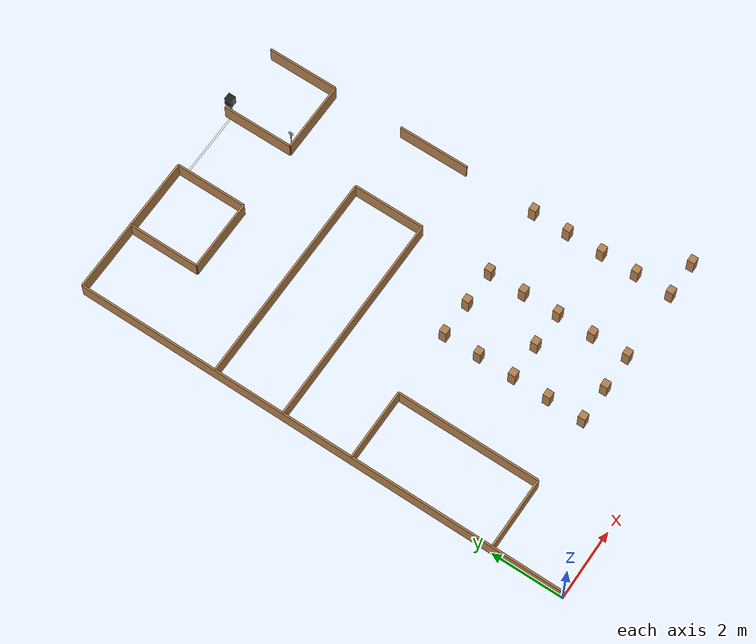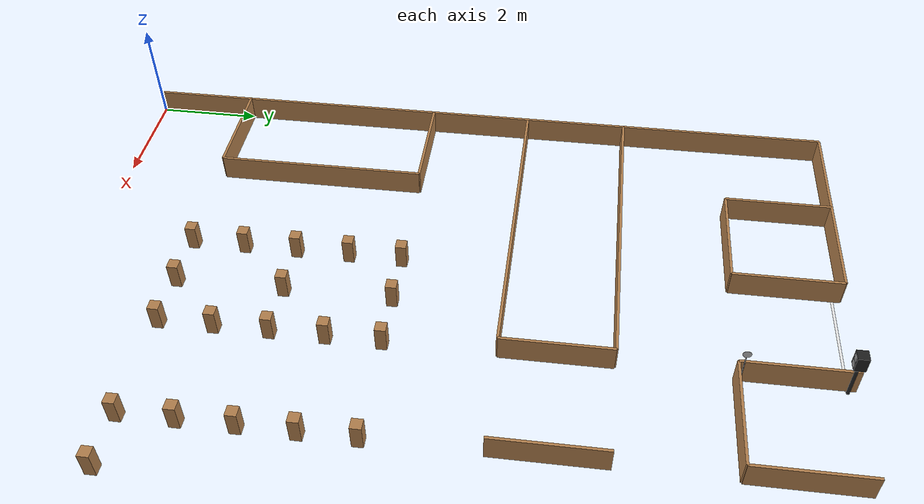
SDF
<sdf version="1.6">
 <world name="default">
  <model name="box_71">
   <pose>9.0 2.0 0.25 0 0 0</pose>
   <link name="link">
    <inertial>
     <mass>1</mass>
     <inertia><ixx>0</ixx><ixy>0</ixy><ixz>0</ixz><iyy>0</iyy><iyz>0</iyz><izz>0</izz></inertia>
    </inertial>
    <collision name="collision"><geometry><box><size>0.2 0.2 0.5</size></box></geometry></collision>
    <visual name="visual">
     <geometry><box><size>0.2 0.2 0.5</size></box></geometry>
     <material>
      <script><name>Gazebo/WoodPallet</name><uri>file://media/materials/scripts/gazebo.material</uri></script>
     </material>
    </visual>
   </link>
   <static>1</static>
  </model>
  <model name="box_70">
   <pose>8.0 2.0 0.25 0 0 0</pose>
   <link name="link">
    <inertial>
     <mass>1</mass>
     <inertia><ixx>0</ixx><ixy>0</ixy><ixz>0</ixz><iyy>0</iyy><iyz>0</iyz><izz>0</izz></inertia>
    </inertial>
    <collision name="collision"><geometry><box><size>0.2 0.2 0.5</size></box></geometry></collision>
    <visual name="visual">
     <geometry><box><size>0.2 0.2 0.5</size></box></geometry>
     <material>
      <script><name>Gazebo/WoodPallet</name><uri>file://media/materials/scripts/gazebo.material</uri></script>
     </material>
    </visual>
   </link>
   <static>1</static>
  </model>
  <model name="box_68">
   <pose>8.0 3.0 0.25 0 0 0</pose>
   <link name="link">
    <inertial>
     <mass>1</mass>
     <inertia><ixx>0</ixx><ixy>0</ixy><ixz>0</ixz><iyy>0</iyy><iyz>0</iyz><izz>0</izz></inertia>
    </inertial>
    <collision name="collision"><geometry><box><size>0.2 0.2 0.5</size></box></geometry></collision>
    <visual name="visual">
     <geometry><box><size>0.2 0.2 0.5</size></box></geometry>
     <material>
      <script><name>Gazebo/WoodPallet</name><uri>file://media/materials/scripts/gazebo.material</uri></script>
     </material>
    </visual>
   </link>
   <static>1</static>
  </model>
  <model name="box_65">
   <pose>8.0 4.0 0.25 0 0 0</pose>
   <link name="link">
    <inertial>
     <mass>1</mass>
     <inertia><ixx>0</ixx><ixy>0</ixy><ixz>0</ixz><iyy>0</iyy><iyz>0</iyz><izz>0</izz></inertia>
    </inertial>
    <collision name="collision"><geometry><box><size>0.2 0.2 0.5</size></box></geometry></collision>
    <visual name="visual">
     <geometry><box><size>0.2 0.2 0.5</size></box></geometry>
     <material>
      <script><name>Gazebo/WoodPallet</name><uri>file://media/materials/scripts/gazebo.material</uri></script>
     </material>
    </visual>
   </link>
   <static>1</static>
  </model>
  <model name="box_62">
   <pose>8.0 4.0 0.25 0 0 0</pose>
   <link name="link">
    <inertial>
     <mass>1</mass>
     <inertia><ixx>0</ixx><ixy>0</ixy><ixz>0</ixz><iyy>0</iyy><iyz>0</iyz><izz>0</izz></inertia>
    </inertial>
    <collision name="collision"><geometry><box><size>0.2 0.2 0.5</size></box></geometry></collision>
    <visual name="visual">
     <geometry><box><size>0.2 0.2 0.5</size></box></geometry>
     <material>
      <script><name>Gazebo/WoodPallet</name><uri>file://media/materials/scripts/gazebo.material</uri></script>
     </material>
    </visual>
   </link>
   <static>1</static>
  </model>
  <model name="box_60">
   <pose>8.0 5.0 0.25 0 0 0</pose>
   <link name="link">
    <inertial>
     <mass>1</mass>
     <inertia><ixx>0</ixx><ixy>0</ixy><ixz>0</ixz><iyy>0</iyy><iyz>0</iyz><izz>0</izz></inertia>
    </inertial>
    <collision name="collision"><geometry><box><size>0.2 0.2 0.5</size></box></geometry></collision>
    <visual name="visual">
     <geometry><box><size>0.2 0.2 0.5</size></box></geometry>
     <material>
      <script><name>Gazebo/WoodPallet</name><uri>file://media/materials/scripts/gazebo.material</uri></script>
     </material>
    </visual>
   </link>
   <static>1</static>
  </model>
  <model name="box_57">
   <pose>8.0 6.0 0.25 0 0 0</pose>
   <link name="link">
    <inertial>
     <mass>1</mass>
     <inertia><ixx>0</ixx><ixy>0</ixy><ixz>0</ixz><iyy>0</iyy><iyz>0</iyz><izz>0</izz></inertia>
    </inertial>
    <collision name="collision"><geometry><box><size>0.2 0.2 0.5</size></box></geometry></collision>
    <visual name="visual">
     <geometry><box><size>0.2 0.2 0.5</size></box></geometry>
     <material>
      <script><name>Gazebo/WoodPallet</name><uri>file://media/materials/scripts/gazebo.material</uri></script>
     </material>
    </visual>
   </link>
   <static>1</static>
  </model>
  <model name="box_56">
   <pose>6.0 2.0 0.25 0 0 0</pose>
   <link name="link">
    <inertial>
     <mass>1</mass>
     <inertia><ixx>0</ixx><ixy>0</ixy><ixz>0</ixz><iyy>0</iyy><iyz>0</iyz><izz>0</izz></inertia>
    </inertial>
    <collision name="collision"><geometry><box><size>0.2 0.2 0.5</size></box></geometry></collision>
    <visual name="visual">
     <geometry><box><size>0.2 0.2 0.5</size></box></geometry>
     <material>
      <script><name>Gazebo/WoodPallet</name><uri>file://media/materials/scripts/gazebo.material</uri></script>
     </material>
    </visual>
   </link>
   <static>1</static>
  </model>
  <model name="box_55">
   <pose>5.0 2.0 0.25 0 0 0</pose>
   <link name="link">
    <inertial>
     <mass>1</mass>
     <inertia><ixx>0</ixx><ixy>0</ixy><ixz>0</ixz><iyy>0</iyy><iyz>0</iyz><izz>0</izz></inertia>
    </inertial>
    <collision name="collision"><geometry><box><size>0.2 0.2 0.5</size></box></geometry></collision>
    <visual name="visual">
     <geometry><box><size>0.2 0.2 0.5</size></box></geometry>
     <material>
      <script><name>Gazebo/WoodPallet</name><uri>file://media/materials/scripts/gazebo.material</uri></script>
     </material>
    </visual>
   </link>
   <static>1</static>
  </model>
  <model name="box_54">
   <pose>4.0 2.0 0.25 0 0 0</pose>
   <link name="link">
    <inertial>
     <mass>1</mass>
     <inertia><ixx>0</ixx><ixy>0</ixy><ixz>0</ixz><iyy>0</iyy><iyz>0</iyz><izz>0</izz></inertia>
    </inertial>
    <collision name="collision"><geometry><box><size>0.2 0.2 0.5</size></box></geometry></collision>
    <visual name="visual">
     <geometry><box><size>0.2 0.2 0.5</size></box></geometry>
     <material>
      <script><name>Gazebo/WoodPallet</name><uri>file://media/materials/scripts/gazebo.material</uri></script>
     </material>
    </visual>
   </link>
   <static>1</static>
  </model>
  <model name="box_53">
   <pose>6.0 3.0 0.25 0 0 0</pose>
   <link name="link">
    <inertial>
     <mass>1</mass>
     <inertia><ixx>0</ixx><ixy>0</ixy><ixz>0</ixz><iyy>0</iyy><iyz>0</iyz><izz>0</izz></inertia>
    </inertial>
    <collision name="collision"><geometry><box><size>0.2 0.2 0.5</size></box></geometry></collision>
    <visual name="visual">
     <geometry><box><size>0.2 0.2 0.5</size></box></geometry>
     <material>
      <script><name>Gazebo/WoodPallet</name><uri>file://media/materials/scripts/gazebo.material</uri></script>
     </material>
    </visual>
   </link>
   <static>1</static>
  </model>
  <model name="box_52">
   <pose>4.0 3.0 0.25 0 0 0</pose>
   <link name="link">
    <inertial>
     <mass>1</mass>
     <inertia><ixx>0</ixx><ixy>0</ixy><ixz>0</ixz><iyy>0</iyy><iyz>0</iyz><izz>0</izz></inertia>
    </inertial>
    <collision name="collision"><geometry><box><size>0.2 0.2 0.5</size></box></geometry></collision>
    <visual name="visual">
     <geometry><box><size>0.2 0.2 0.5</size></box></geometry>
     <material>
      <script><name>Gazebo/WoodPallet</name><uri>file://media/materials/scripts/gazebo.material</uri></script>
     </material>
    </visual>
   </link>
   <static>1</static>
  </model>
  <model name="box_51">
   <pose>6.0 4.0 0.25 0 0 0</pose>
   <link name="link">
    <inertial>
     <mass>1</mass>
     <inertia><ixx>0</ixx><ixy>0</ixy><ixz>0</ixz><iyy>0</iyy><iyz>0</iyz><izz>0</izz></inertia>
    </inertial>
    <collision name="collision"><geometry><box><size>0.2 0.2 0.5</size></box></geometry></collision>
    <visual name="visual">
     <geometry><box><size>0.2 0.2 0.5</size></box></geometry>
     <material>
      <script><name>Gazebo/WoodPallet</name><uri>file://media/materials/scripts/gazebo.material</uri></script>
     </material>
    </visual>
   </link>
   <static>1</static>
  </model>
  <model name="box_50">
   <pose>5.0 4.0 0.25 0 0 0</pose>
   <link name="link">
    <inertial>
     <mass>1</mass>
     <inertia><ixx>0</ixx><ixy>0</ixy><ixz>0</ixz><iyy>0</iyy><iyz>0</iyz><izz>0</izz></inertia>
    </inertial>
    <collision name="collision"><geometry><box><size>0.2 0.2 0.5</size></box></geometry></collision>
    <visual name="visual">
     <geometry><box><size>0.2 0.2 0.5</size></box></geometry>
     <material>
      <script><name>Gazebo/WoodPallet</name><uri>file://media/materials/scripts/gazebo.material</uri></script>
     </material>
    </visual>
   </link>
   <static>1</static>
  </model>
  <model name="box_49">
   <pose>4.0 4.0 0.25 0 0 0</pose>
   <link name="link">
    <inertial>
     <mass>1</mass>
     <inertia><ixx>0</ixx><ixy>0</ixy><ixz>0</ixz><iyy>0</iyy><iyz>0</iyz><izz>0</izz></inertia>
    </inertial>
    <collision name="collision"><geometry><box><size>0.2 0.2 0.5</size></box></geometry></collision>
    <visual name="visual">
     <geometry><box><size>0.2 0.2 0.5</size></box></geometry>
     <material>
      <script><name>Gazebo/WoodPallet</name><uri>file://media/materials/scripts/gazebo.material</uri></script>
     </material>
    </visual>
   </link>
   <static>1</static>
  </model>
  <model name="box_48">
   <pose>6.0 4.0 0.25 0 0 0</pose>
   <link name="link">
    <inertial>
     <mass>1</mass>
     <inertia><ixx>0</ixx><ixy>0</ixy><ixz>0</ixz><iyy>0</iyy><iyz>0</iyz><izz>0</izz></inertia>
    </inertial>
    <collision name="collision"><geometry><box><size>0.2 0.2 0.5</size></box></geometry></collision>
    <visual name="visual">
     <geometry><box><size>0.2 0.2 0.5</size></box></geometry>
     <material>
      <script><name>Gazebo/WoodPallet</name><uri>file://media/materials/scripts/gazebo.material</uri></script>
     </material>
    </visual>
   </link>
   <static>1</static>
  </model>
  <model name="box_47">
   <pose>5.0 4.0 0.25 0 0 0</pose>
   <link name="link">
    <inertial>
     <mass>1</mass>
     <inertia><ixx>0</ixx><ixy>0</ixy><ixz>0</ixz><iyy>0</iyy><iyz>0</iyz><izz>0</izz></inertia>
    </inertial>
    <collision name="collision"><geometry><box><size>0.2 0.2 0.5</size></box></geometry></collision>
    <visual name="visual">
     <geometry><box><size>0.2 0.2 0.5</size></box></geometry>
     <material>
      <script><name>Gazebo/WoodPallet</name><uri>file://media/materials/scripts/gazebo.material</uri></script>
     </material>
    </visual>
   </link>
   <static>1</static>
  </model>
  <model name="box_46">
   <pose>4.0 4.0 0.25 0 0 0</pose>
   <link name="link">
    <inertial>
     <mass>1</mass>
     <inertia><ixx>0</ixx><ixy>0</ixy><ixz>0</ixz><iyy>0</iyy><iyz>0</iyz><izz>0</izz></inertia>
    </inertial>
    <collision name="collision"><geometry><box><size>0.2 0.2 0.5</size></box></geometry></collision>
    <visual name="visual">
     <geometry><box><size>0.2 0.2 0.5</size></box></geometry>
     <material>
      <script><name>Gazebo/WoodPallet</name><uri>file://media/materials/scripts/gazebo.material</uri></script>
     </material>
    </visual>
   </link>
   <static>1</static>
  </model>
  <model name="box_45">
   <pose>6.0 5.0 0.25 0 0 0</pose>
   <link name="link">
    <inertial>
     <mass>1</mass>
     <inertia><ixx>0</ixx><ixy>0</ixy><ixz>0</ixz><iyy>0</iyy><iyz>0</iyz><izz>0</izz></inertia>
    </inertial>
    <collision name="collision"><geometry><box><size>0.2 0.2 0.5</size></box></geometry></collision>
    <visual name="visual">
     <geometry><box><size>0.2 0.2 0.5</size></box></geometry>
     <material>
      <script><name>Gazebo/WoodPallet</name><uri>file://media/materials/scripts/gazebo.material</uri></script>
     </material>
    </visual>
   </link>
   <static>1</static>
  </model>
  <model name="box_44">
   <pose>4.0 5.0 0.25 0 0 0</pose>
   <link name="link">
    <inertial>
     <mass>1</mass>
     <inertia><ixx>0</ixx><ixy>0</ixy><ixz>0</ixz><iyy>0</iyy><iyz>0</iyz><izz>0</izz></inertia>
    </inertial>
    <collision name="collision"><geometry><box><size>0.2 0.2 0.5</size></box></geometry></collision>
    <visual name="visual">
     <geometry><box><size>0.2 0.2 0.5</size></box></geometry>
     <material>
      <script><name>Gazebo/WoodPallet</name><uri>file://media/materials/scripts/gazebo.material</uri></script>
     </material>
    </visual>
   </link>
   <static>1</static>
  </model>
  <model name="box_43">
   <pose>6.0 6.0 0.25 0 0 0</pose>
   <link name="link">
    <inertial>
     <mass>1</mass>
     <inertia><ixx>0</ixx><ixy>0</ixy><ixz>0</ixz><iyy>0</iyy><iyz>0</iyz><izz>0</izz></inertia>
    </inertial>
    <collision name="collision"><geometry><box><size>0.2 0.2 0.5</size></box></geometry></collision>
    <visual name="visual">
     <geometry><box><size>0.2 0.2 0.5</size></box></geometry>
     <material>
      <script><name>Gazebo/WoodPallet</name><uri>file://media/materials/scripts/gazebo.material</uri></script>
     </material>
    </visual>
   </link>
   <static>1</static>
  </model>
  <model name="box_42">
   <pose>5.0 6.0 0.25 0 0 0</pose>
   <link name="link">
    <inertial>
     <mass>1</mass>
     <inertia><ixx>0</ixx><ixy>0</ixy><ixz>0</ixz><iyy>0</iyy><iyz>0</iyz><izz>0</izz></inertia>
    </inertial>
    <collision name="collision"><geometry><box><size>0.2 0.2 0.5</size></box></geometry></collision>
    <visual name="visual">
     <geometry><box><size>0.2 0.2 0.5</size></box></geometry>
     <material>
      <script><name>Gazebo/WoodPallet</name><uri>file://media/materials/scripts/gazebo.material</uri></script>
     </material>
    </visual>
   </link>
   <static>1</static>
  </model>
  <model name="box_41">
   <pose>4.0 6.0 0.25 0 0 0</pose>
   <link name="link">
    <inertial>
     <mass>1</mass>
     <inertia><ixx>0</ixx><ixy>0</ixy><ixz>0</ixz><iyy>0</iyy><iyz>0</iyz><izz>0</izz></inertia>
    </inertial>
    <collision name="collision"><geometry><box><size>0.2 0.2 0.5</size></box></geometry></collision>
    <visual name="visual">
     <geometry><box><size>0.2 0.2 0.5</size></box></geometry>
     <material>
      <script><name>Gazebo/WoodPallet</name><uri>file://media/materials/scripts/gazebo.material</uri></script>
     </material>
    </visual>
   </link>
   <static>1</static>
  </model>
  <include>
   <uri>model://right-sign</uri>
   <name>sign_1</name>
   <pose>6.14 12.06 0 0 0 1.5707963267948966</pose>
  </include>
  <model name="box_37">
   <pose>8.0 13.0 0.25 0 0 -1.5707963267948966</pose>
   <link name="link">
    <inertial>
     <mass>1</mass>
     <inertia><ixx>0</ixx><ixy>0</ixy><ixz>0</ixz><iyy>0</iyy><iyz>0</iyz><izz>0</izz></inertia>
    </inertial>
    <collision name="collision"><geometry><box><size>2.0 0.05 0.5</size></box></geometry></collision>
    <visual name="visual">
     <geometry><box><size>2.0 0.05 0.5</size></box></geometry>
     <material>
      <script><name>Gazebo/WoodPallet</name><uri>file://media/materials/scripts/gazebo.material</uri></script>
     </material>
    </visual>
   </link>
   <static>1</static>
  </model>
  <model name="box_36">
   <pose>7.0 12.0 0.25 0 0 -3.141592653589793</pose>
   <link name="link">
    <inertial>
     <mass>1</mass>
     <inertia><ixx>0</ixx><ixy>0</ixy><ixz>0</ixz><iyy>0</iyy><iyz>0</iyz><izz>0</izz></inertia>
    </inertial>
    <collision name="collision"><geometry><box><size>2.0 0.05 0.5</size></box></geometry></collision>
    <visual name="visual">
     <geometry><box><size>2.0 0.05 0.5</size></box></geometry>
     <material>
      <script><name>Gazebo/WoodPallet</name><uri>file://media/materials/scripts/gazebo.material</uri></script>
     </material>
    </visual>
   </link>
   <static>1</static>
  </model>
  <model name="box_35">
   <pose>6.0 13.0 0.25 0 0 1.5707963267948966</pose>
   <link name="link">
    <inertial>
     <mass>1</mass>
     <inertia><ixx>0</ixx><ixy>0</ixy><ixz>0</ixz><iyy>0</iyy><iyz>0</iyz><izz>0</izz></inertia>
    </inertial>
    <collision name="collision"><geometry><box><size>2.0 0.05 0.5</size></box></geometry></collision>
    <visual name="visual">
     <geometry><box><size>2.0 0.05 0.5</size></box></geometry>
     <material>
      <script><name>Gazebo/WoodPallet</name><uri>file://media/materials/scripts/gazebo.material</uri></script>
     </material>
    </visual>
   </link>
   <static>1</static>
  </model>
  <model name="box_34">
   <pose>2.0 13.0 0.25 0 0 -1.5707963267948966</pose>
   <link name="link">
    <inertial>
     <mass>1</mass>
     <inertia><ixx>0</ixx><ixy>0</ixy><ixz>0</ixz><iyy>0</iyy><iyz>0</iyz><izz>0</izz></inertia>
    </inertial>
    <collision name="collision"><geometry><box><size>2.0 0.05 0.5</size></box></geometry></collision>
    <visual name="visual">
     <geometry><box><size>2.0 0.05 0.5</size></box></geometry>
     <material>
      <script><name>Gazebo/WoodPallet</name><uri>file://media/materials/scripts/gazebo.material</uri></script>
     </material>
    </visual>
   </link>
   <static>1</static>
  </model>
  <model name="box_33">
   <pose>3.0 12.0 0.25 0 0 -0.0</pose>
   <link name="link">
    <inertial>
     <mass>1</mass>
     <inertia><ixx>0</ixx><ixy>0</ixy><ixz>0</ixz><iyy>0</iyy><iyz>0</iyz><izz>0</izz></inertia>
    </inertial>
    <collision name="collision"><geometry><box><size>2.0 0.05 0.5</size></box></geometry></collision>
    <visual name="visual">
     <geometry><box><size>2.0 0.05 0.5</size></box></geometry>
     <material>
      <script><name>Gazebo/WoodPallet</name><uri>file://media/materials/scripts/gazebo.material</uri></script>
     </material>
    </visual>
   </link>
   <static>1</static>
  </model>
  <model name="box_32">
   <pose>4.0 13.0 0.25 0 0 1.5707963267948966</pose>
   <link name="link">
    <inertial>
     <mass>1</mass>
     <inertia><ixx>0</ixx><ixy>0</ixy><ixz>0</ixz><iyy>0</iyy><iyz>0</iyz><izz>0</izz></inertia>
    </inertial>
    <collision name="collision"><geometry><box><size>2.0 0.05 0.5</size></box></geometry></collision>
    <visual name="visual">
     <geometry><box><size>2.0 0.05 0.5</size></box></geometry>
     <material>
      <script><name>Gazebo/WoodPallet</name><uri>file://media/materials/scripts/gazebo.material</uri></script>
     </material>
    </visual>
   </link>
   <static>1</static>
  </model>
  <model name="box_31">
   <pose>1.0 2.0 0.25 0 0 -0.0</pose>
   <link name="link">
    <inertial>
     <mass>1</mass>
     <inertia><ixx>0</ixx><ixy>0</ixy><ixz>0</ixz><iyy>0</iyy><iyz>0</iyz><izz>0</izz></inertia>
    </inertial>
    <collision name="collision"><geometry><box><size>2.0 0.05 0.5</size></box></geometry></collision>
    <visual name="visual">
     <geometry><box><size>2.0 0.05 0.5</size></box></geometry>
     <material>
      <script><name>Gazebo/WoodPallet</name><uri>file://media/materials/scripts/gazebo.material</uri></script>
     </material>
    </visual>
   </link>
   <static>1</static>
  </model>
  <model name="box_30">
   <pose>2.0 4.0 0.25 0 0 1.5707963267948966</pose>
   <link name="link">
    <inertial>
     <mass>1</mass>
     <inertia><ixx>0</ixx><ixy>0</ixy><ixz>0</ixz><iyy>0</iyy><iyz>0</iyz><izz>0</izz></inertia>
    </inertial>
    <collision name="collision"><geometry><box><size>4.0 0.05 0.5</size></box></geometry></collision>
    <visual name="visual">
     <geometry><box><size>4.0 0.05 0.5</size></box></geometry>
     <material>
      <script><name>Gazebo/WoodPallet</name><uri>file://media/materials/scripts/gazebo.material</uri></script>
     </material>
    </visual>
   </link>
   <static>1</static>
  </model>
  <model name="box_29">
   <pose>1.0 6.0 0.25 0 0 -3.141592653589793</pose>
   <link name="link">
    <inertial>
     <mass>1</mass>
     <inertia><ixx>0</ixx><ixy>0</ixy><ixz>0</ixz><iyy>0</iyy><iyz>0</iyz><izz>0</izz></inertia>
    </inertial>
    <collision name="collision"><geometry><box><size>2.0 0.05 0.5</size></box></geometry></collision>
    <visual name="visual">
     <geometry><box><size>2.0 0.05 0.5</size></box></geometry>
     <material>
      <script><name>Gazebo/WoodPallet</name><uri>file://media/materials/scripts/gazebo.material</uri></script>
     </material>
    </visual>
   </link>
   <static>1</static>
  </model>
  <model name="box_28">
   <pose>3.0 10.0 0.25 0 0 -0.0</pose>
   <link name="link">
    <inertial>
     <mass>1</mass>
     <inertia><ixx>0</ixx><ixy>0</ixy><ixz>0</ixz><iyy>0</iyy><iyz>0</iyz><izz>0</izz></inertia>
    </inertial>
    <collision name="collision"><geometry><box><size>6.0 0.05 0.5</size></box></geometry></collision>
    <visual name="visual">
     <geometry><box><size>6.0 0.05 0.5</size></box></geometry>
     <material>
      <script><name>Gazebo/WoodPallet</name><uri>file://media/materials/scripts/gazebo.material</uri></script>
     </material>
    </visual>
   </link>
   <static>1</static>
  </model>
  <model name="box_27">
   <pose>6.0 9.0 0.25 0 0 -1.5707963267948966</pose>
   <link name="link">
    <inertial>
     <mass>1</mass>
     <inertia><ixx>0</ixx><ixy>0</ixy><ixz>0</ixz><iyy>0</iyy><iyz>0</iyz><izz>0</izz></inertia>
    </inertial>
    <collision name="collision"><geometry><box><size>2.0 0.05 0.5</size></box></geometry></collision>
    <visual name="visual">
     <geometry><box><size>2.0 0.05 0.5</size></box></geometry>
     <material>
      <script><name>Gazebo/WoodPallet</name><uri>file://media/materials/scripts/gazebo.material</uri></script>
     </material>
    </visual>
   </link>
   <static>1</static>
  </model>
  <model name="box_26">
   <pose>3.0 8.0 0.25 0 0 -3.141592653589793</pose>
   <link name="link">
    <inertial>
     <mass>1</mass>
     <inertia><ixx>0</ixx><ixy>0</ixy><ixz>0</ixz><iyy>0</iyy><iyz>0</iyz><izz>0</izz></inertia>
    </inertial>
    <collision name="collision"><geometry><box><size>6.0 0.05 0.5</size></box></geometry></collision>
    <visual name="visual">
     <geometry><box><size>6.0 0.05 0.5</size></box></geometry>
     <material>
      <script><name>Gazebo/WoodPallet</name><uri>file://media/materials/scripts/gazebo.material</uri></script>
     </material>
    </visual>
   </link>
   <static>1</static>
  </model>
  <model name="box_24">
   <pose>8.0 9.0 0.25 0 0 -1.5707963267948966</pose>
   <link name="link">
    <inertial>
     <mass>1</mass>
     <inertia><ixx>0</ixx><ixy>0</ixy><ixz>0</ixz><iyy>0</iyy><iyz>0</iyz><izz>0</izz></inertia>
    </inertial>
    <collision name="collision"><geometry><box><size>2.0 0.05 0.5</size></box></geometry></collision>
    <visual name="visual">
     <geometry><box><size>2.0 0.05 0.5</size></box></geometry>
     <material>
      <script><name>Gazebo/WoodPallet</name><uri>file://media/materials/scripts/gazebo.material</uri></script>
     </material>
    </visual>
   </link>
   <static>1</static>
  </model>
  <model name="box_2">
   <pose>0.0 7.0 0.25 0 0 1.5707963267948966</pose>
   <link name="link">
    <inertial>
     <mass>1</mass>
     <inertia><ixx>0</ixx><ixy>0</ixy><ixz>0</ixz><iyy>0</iyy><iyz>0</iyz><izz>0</izz></inertia>
    </inertial>
    <collision name="collision"><geometry><box><size>14.0 0.05 0.5</size></box></geometry></collision>
    <visual name="visual">
     <geometry><box><size>14.0 0.05 0.5</size></box></geometry>
     <material>
      <script><name>Gazebo/WoodPallet</name><uri>file://media/materials/scripts/gazebo.material</uri></script>
     </material>
    </visual>
   </link>
   <static>1</static>
  </model>
  <model name="box_1">
   <pose>2.0 14.0 0.25 0 0 -0.0</pose>
   <link name="link">
    <inertial>
     <mass>1</mass>
     <inertia><ixx>0</ixx><ixy>0</ixy><ixz>0</ixz><iyy>0</iyy><iyz>0</iyz><izz>0</izz></inertia>
    </inertial>
    <collision name="collision"><geometry><box><size>4.0 0.05 0.5</size></box></geometry></collision>
    <visual name="visual">
     <geometry><box><size>4.0 0.05 0.5</size></box></geometry>
     <material>
      <script><name>Gazebo/WoodPallet</name><uri>file://media/materials/scripts/gazebo.material</uri></script>
     </material>
    </visual>
   </link>
   <static>1</static>
  </model>
  <model name="tl_line_4">
   <static>1</static>
   <pose>5.0 13.86 0.001 0 0 6.283185307179586</pose>
   <link name="link">
    <collision name="collision">
     <geometry><plane><normal>0 0 1</normal><size>2.0 0.05</size></plane></geometry>
     <surface><friction><ode><mu>100</mu><mu2>50</mu2></ode></friction></surface>
    </collision>
    <visual name="visual">
     <geometry><plane><normal>0 0 1</normal><size>2.0 0.05</size></plane></geometry>
     <material>
      <script><name>Gazebo/White</name><uri>file://media/materials/scripts/gazebo.material</uri></script>
     </material>
    </visual>
   </link>
  </model>
  <include>
   <uri>model://traffic-light</uri>
   <name>traffic_light_3</name>
   <pose>6.06 13.86 0 0 0 6.283185307179586</pose>
  </include>
 </world>
</sdf>
